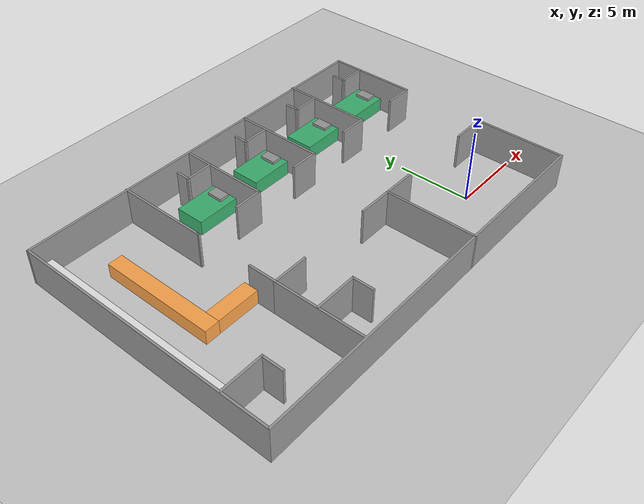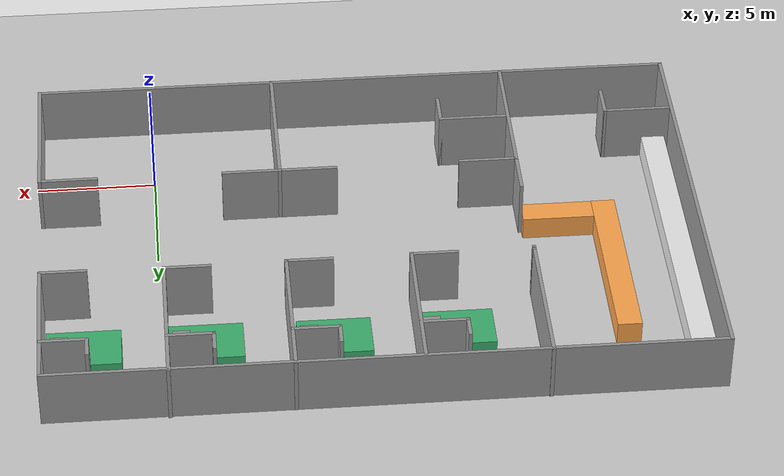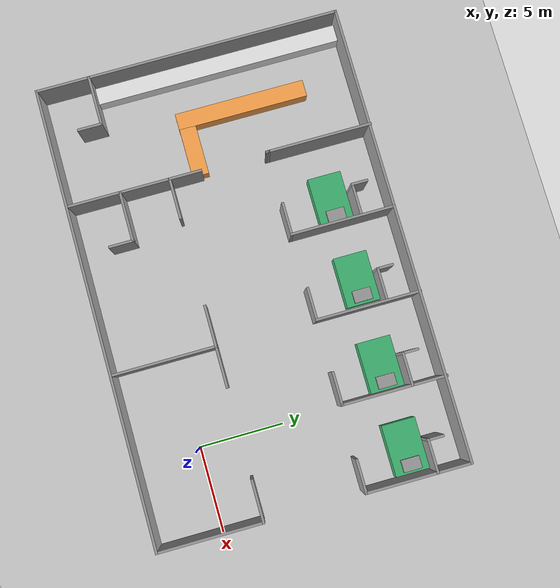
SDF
<sdf version="1.7">
 <world name="default">
  <light name="sun" type="directional">
   <pose>0 0 10 0 -0 0</pose>
   <diffuse>0.8 0.8 0.8 1</diffuse>
   <specular>0.2 0.2 0.2 1</specular>
   <attenuation>
    <range>1000</range>
    <constant>0.9</constant>
    <linear>0.01</linear>
    <quadratic>0.001</quadratic>
   </attenuation>
   <direction>-0.5 0.1 -0.9</direction>
   <spot><inner_angle>0</inner_angle><outer_angle>0</outer_angle><falloff>0</falloff></spot>
  </light>
  <model name="ground_plane">
   <static>1</static>
   <link name="link">
    <collision name="collision">
     <geometry><plane><normal>0 0 1</normal><size>100 100</size></plane></geometry>
     <surface>
      <contact><collide_bitmask>65535</collide_bitmask></contact>
      <friction><ode><mu>100</mu><mu2>50</mu2></ode></friction>
     </surface>
    </collision>
    <visual name="visual">
     <cast_shadows>0</cast_shadows>
     <geometry><plane><normal>0 0 1</normal><size>100 100</size></plane></geometry>
     <material>
      <script><uri>file://media/materials/scripts/gazebo.material</uri><name>Gazebo/Grey</name></script>
     </material>
    </visual>
   </link>
  </model>
  <gravity>0 0 -9.8</gravity>
  <magnetic_field>6e-06 2.3e-05 -4.2e-05</magnetic_field>
  <atmosphere type="adiabatic"/>
  <physics type="ode">
   <max_step_size>0.001</max_step_size>
   <real_time_factor>1</real_time_factor>
   <real_time_update_rate>1000</real_time_update_rate>
  </physics>
  <scene><ambient>0.4 0.4 0.4 1</ambient><background>0.7 0.7 0.7 1</background><shadows>1</shadows></scene>
  <spherical_coordinates>
   <surface_model>EARTH_WGS84</surface_model>
   <latitude_deg>0</latitude_deg>
   <longitude_deg>0</longitude_deg>
   <elevation>0</elevation>
   <heading_deg>0</heading_deg>
  </spherical_coordinates>
  <model name="my_hospital_rev2_20211008">
   <pose>-8.76557 5.4163 0 0 -0 0</pose>
   <link name="Wall_10">
    <collision name="Wall_10_Collision">
     <geometry><box><size>6.25 0.15 2.5</size></box></geometry>
     <pose>0 0 1.25 0 -0 0</pose>
    </collision>
    <visual name="Wall_10_Visual">
     <pose>0 0 1.25 0 -0 0</pose>
     <geometry><box><size>6.25 0.15 2.5</size></box></geometry>
     <material>
      <script><uri>file://media/materials/scripts/gazebo.material</uri><name>Gazebo/Grey</name></script>
      <ambient>1 1 1 1</ambient>
     </material>
     <meta><layer>0</layer></meta>
    </visual>
    <pose>13.55 5.96371 0 0 -0 -1.5708</pose>
   </link>
   <link name="Wall_12">
    <collision name="Wall_12_Collision">
     <geometry><box><size>18.25 0.15 2.5</size></box></geometry>
     <pose>0 0 1.25 0 -0 0</pose>
    </collision>
    <visual name="Wall_12_Visual">
     <pose>0 0 1.25 0 -0 0</pose>
     <geometry><box><size>18.25 0.15 2.5</size></box></geometry>
     <material>
      <script><uri>file://media/materials/scripts/gazebo.material</uri><name>Gazebo/Grey</name></script>
      <ambient>1 1 1 1</ambient>
     </material>
     <meta><layer>0</layer></meta>
    </visual>
    <pose>-13.55 -0.036285 0 0 -0 -1.5708</pose>
   </link>
   <link name="Wall_13">
    <collision name="Wall_13_Collision">
     <geometry><box><size>27.25 0.15 2.5</size></box></geometry>
     <pose>0 0 1.25 0 -0 0</pose>
    </collision>
    <visual name="Wall_13_Visual">
     <pose>0 0 1.25 0 -0 0</pose>
     <geometry><box><size>27.25 0.15 2.5</size></box></geometry>
     <material>
      <script><uri>file://media/materials/scripts/gazebo.material</uri><name>Gazebo/Grey</name></script>
      <ambient>1 1 1 1</ambient>
     </material>
     <meta><layer>0</layer></meta>
    </visual>
    <pose>-0 -9.08629 0 0 -0 0</pose>
   </link>
   <link name="Wall_14">
    <collision name="Wall_14_Collision">
     <geometry><box><size>6.25 0.15 2.5</size></box></geometry>
     <pose>0 0 1.25 0 -0 0</pose>
    </collision>
    <visual name="Wall_14_Visual">
     <pose>0 0 1.25 0 -0 0</pose>
     <geometry><box><size>6.25 0.15 2.5</size></box></geometry>
     <material>
      <script><uri>file://media/materials/scripts/gazebo.material</uri><name>Gazebo/Grey</name></script>
      <ambient>1 1 1 1</ambient>
     </material>
     <meta><layer>0</layer></meta>
    </visual>
    <pose>13.55 -6.03629 0 0 -0 1.5708</pose>
   </link>
   <link name="Wall_16">
    <collision name="Wall_16_Collision">
     <geometry><box><size>6.25 0.15 2.5</size></box></geometry>
     <pose>0 0 1.25 0 -0 0</pose>
    </collision>
    <visual name="Wall_16_Visual">
     <pose>0 0 1.25 0 -0 0</pose>
     <geometry><box><size>6.25 0.15 2.5</size></box></geometry>
     <material>
      <script><uri>file://media/materials/scripts/gazebo.material</uri><name>Gazebo/Grey</name></script>
      <ambient>1 1 1 1</ambient>
     </material>
     <meta><layer>0</layer></meta>
    </visual>
    <pose>-6.50009 6.00886 0 0 -0 -1.5708</pose>
   </link>
   <link name="Wall_18">
    <collision name="Wall_18_Collision">
     <geometry><box><size>6.25 0.15 2.5</size></box></geometry>
     <pose>0 0 1.25 0 -0 0</pose>
    </collision>
    <visual name="Wall_18_Visual">
     <pose>0 0 1.25 0 -0 0</pose>
     <geometry><box><size>6.25 0.15 2.5</size></box></geometry>
     <material>
      <script><uri>file://media/materials/scripts/gazebo.material</uri><name>Gazebo/Grey</name></script>
      <ambient>1 1 1 1</ambient>
     </material>
     <meta><layer>0</layer></meta>
    </visual>
    <pose>-1.4914 5.95669 0 0 -0 -1.5708</pose>
   </link>
   <link name="Wall_20">
    <collision name="Wall_20_Collision">
     <geometry><box><size>6.25 0.15 2.5</size></box></geometry>
     <pose>0 0 1.25 0 -0 0</pose>
    </collision>
    <visual name="Wall_20_Visual">
     <pose>0 0 1.25 0 -0 0</pose>
     <geometry><box><size>6.25 0.15 2.5</size></box></geometry>
     <material>
      <script><uri>file://media/materials/scripts/gazebo.material</uri><name>Gazebo/Grey</name></script>
      <ambient>1 1 1 1</ambient>
     </material>
     <meta><layer>0</layer></meta>
    </visual>
    <pose>3.5968 5.98519 0 0 -0 -1.5708</pose>
   </link>
   <link name="Wall_22">
    <collision name="Wall_22_Collision">
     <geometry><box><size>6.25 0.15 2.5</size></box></geometry>
     <pose>0 0 1.25 0 -0 0</pose>
    </collision>
    <visual name="Wall_22_Visual">
     <pose>0 0 1.25 0 -0 0</pose>
     <geometry><box><size>6.25 0.15 2.5</size></box></geometry>
     <material>
      <script><uri>file://media/materials/scripts/gazebo.material</uri><name>Gazebo/Grey</name></script>
      <ambient>1 1 1 1</ambient>
     </material>
     <meta><layer>0</layer></meta>
    </visual>
    <pose>8.55332 6.03736 0 0 -0 -1.5708</pose>
   </link>
   <link name="Wall_24">
    <collision name="Wall_24_Collision">
     <geometry><box><size>6.25 0.15 2.5</size></box></geometry>
     <pose>0 0 1.25 0 -0 0</pose>
    </collision>
    <visual name="Wall_24_Visual">
     <pose>0 0 1.25 0 -0 0</pose>
     <geometry><box><size>6.25 0.15 2.5</size></box></geometry>
     <material>
      <script><uri>file://media/materials/scripts/gazebo.material</uri><name>Gazebo/Grey</name></script>
      <ambient>1 1 1 1</ambient>
     </material>
     <meta><layer>0</layer></meta>
    </visual>
    <pose>-6.47276 -6.01916 0 0 -0 1.5708</pose>
   </link>
   <link name="Wall_30">
    <collision name="Wall_30_Collision">
     <geometry><box><size>6.28923 0.15 2.5</size></box></geometry>
     <pose>0 0 1.25 0 -0 0</pose>
    </collision>
    <visual name="Wall_30_Visual">
     <pose>0 0 1.25 0 -0 0</pose>
     <geometry><box><size>6.28923 0.15 2.5</size></box></geometry>
     <material>
      <script><uri>file://media/materials/scripts/gazebo.material</uri><name>Gazebo/Grey</name></script>
      <ambient>1 1 1 1</ambient>
     </material>
     <meta><layer>0</layer></meta>
    </visual>
    <pose>3.51053 -6.01774 0 0 -0 1.5708</pose>
   </link>
   <link name="Wall_37">
    <collision name="Wall_37_Collision">
     <geometry><box><size>2 0.15 2.5</size></box></geometry>
     <pose>0 0 1.25 0 -0 0</pose>
    </collision>
    <visual name="Wall_37_Visual">
     <pose>0 0 1.25 0 -0 0</pose>
     <geometry><box><size>2 0.15 2.5</size></box></geometry>
     <material>
      <script><uri>file://media/materials/scripts/gazebo.material</uri><name>Gazebo/Grey</name></script>
      <ambient>1 1 1 1</ambient>
     </material>
     <meta><layer>0</layer></meta>
    </visual>
    <pose>-2.4164 2.90668 0 0 -0 3.14159</pose>
   </link>
   <link name="Wall_39">
    <collision name="Wall_39_Collision">
     <geometry><box><size>2 0.15 2.5</size></box></geometry>
     <pose>0 0 1.25 0 -0 0</pose>
    </collision>
    <visual name="Wall_39_Visual">
     <pose>0 0 1.25 0 -0 0</pose>
     <geometry><box><size>2 0.15 2.5</size></box></geometry>
     <material>
      <script><uri>file://media/materials/scripts/gazebo.material</uri><name>Gazebo/Grey</name></script>
      <ambient>1 1 1 1</ambient>
     </material>
     <meta><layer>0</layer></meta>
    </visual>
    <pose>2.6718 2.93519 0 0 -0 3.14159</pose>
   </link>
   <link name="Wall_41">
    <collision name="Wall_41_Collision">
     <geometry><box><size>2 0.15 2.5</size></box></geometry>
     <pose>0 0 1.25 0 -0 0</pose>
    </collision>
    <visual name="Wall_41_Visual">
     <pose>0 0 1.25 0 -0 0</pose>
     <geometry><box><size>2 0.15 2.5</size></box></geometry>
     <material>
      <script><uri>file://media/materials/scripts/gazebo.material</uri><name>Gazebo/Grey</name></script>
      <ambient>1 1 1 1</ambient>
     </material>
     <meta><layer>0</layer></meta>
    </visual>
    <pose>7.62832 2.98736 0 0 -0 3.14159</pose>
   </link>
   <link name="Wall_45">
    <collision name="Wall_45_Collision">
     <geometry><box><size>2 0.15 2.5</size></box></geometry>
     <pose>0 0 1.25 0 -0 0</pose>
    </collision>
    <visual name="Wall_45_Visual">
     <pose>0 0 1.25 0 -0 0</pose>
     <geometry><box><size>2 0.15 2.5</size></box></geometry>
     <material>
      <script><uri>file://media/materials/scripts/gazebo.material</uri><name>Gazebo/Grey</name></script>
      <ambient>1 1 1 1</ambient>
     </material>
     <meta><layer>0</layer></meta>
    </visual>
    <pose>12.625 2.91371 0 0 -0 3.14159</pose>
   </link>
   <link name="Wall_48">
    <collision name="Wall_48_Collision">
     <geometry><box><size>0.25 0.15 2.5</size></box></geometry>
     <pose>0 0 1.25 0 -0 0</pose>
    </collision>
    <visual name="Wall_48_Visual">
     <pose>0 0 1.25 0 -0 0</pose>
     <geometry><box><size>0.25 0.15 2.5</size></box></geometry>
     <material>
      <script><uri>file://media/materials/scripts/gazebo.material</uri><name>Gazebo/Grey</name></script>
      <ambient>1 1 1 1</ambient>
     </material>
     <meta><layer>0</layer></meta>
    </visual>
    <pose>-6.50009 2.90886 0 0 -0 -1.5708</pose>
   </link>
   <link name="Wall_49">
    <collision name="Wall_49_Collision">
     <geometry><box><size>0.25 0.15 2.5</size></box></geometry>
     <pose>0 0 1.25 0 -0 0</pose>
    </collision>
    <visual name="Wall_49_Visual">
     <pose>0 0 1.25 0 -0 0</pose>
     <geometry><box><size>0.25 0.15 2.5</size></box></geometry>
     <material>
      <script><uri>file://media/materials/scripts/gazebo.material</uri><name>Gazebo/Grey</name></script>
      <ambient>1 1 1 1</ambient>
     </material>
     <meta><layer>0</layer></meta>
    </visual>
    <pose>-6.50009 2.90886 0 0 -0 1.5708</pose>
   </link>
   <link name="Wall_51">
    <collision name="Wall_51_Collision">
     <geometry><box><size>2.5 0.15 2.5</size></box></geometry>
     <pose>0 0 1.25 0 -0 0</pose>
    </collision>
    <visual name="Wall_51_Visual">
     <pose>0 0 1.25 0 -0 0</pose>
     <geometry><box><size>2.5 0.15 2.5</size></box></geometry>
     <material>
      <script><uri>file://media/materials/scripts/gazebo.material</uri><name>Gazebo/Grey</name></script>
      <ambient>1 1 1 1</ambient>
     </material>
     <meta><layer>0</layer></meta>
    </visual>
    <pose>-5.29777 -2.96916 0 0 -0 0</pose>
   </link>
   <link name="Wall_53">
    <collision name="Wall_53_Collision">
     <geometry><box><size>2.5 0.15 2.5</size></box></geometry>
     <pose>0 0 1.25 0 -0 0</pose>
    </collision>
    <visual name="Wall_53_Visual">
     <pose>0 0 1.25 0 -0 0</pose>
     <geometry><box><size>2.5 0.15 2.5</size></box></geometry>
     <material>
      <script><uri>file://media/materials/scripts/gazebo.material</uri><name>Gazebo/Grey</name></script>
      <ambient>1 1 1 1</ambient>
     </material>
     <meta><layer>0</layer></meta>
    </visual>
    <pose>2.33553 -2.94813 0 0 -0 3.14159</pose>
   </link>
   <link name="Wall_55">
    <collision name="Wall_55_Collision">
     <geometry><box><size>2.5 0.15 2.5</size></box></geometry>
     <pose>0 0 1.25 0 -0 0</pose>
    </collision>
    <visual name="Wall_55_Visual">
     <pose>0 0 1.25 0 -0 0</pose>
     <geometry><box><size>2.5 0.15 2.5</size></box></geometry>
     <material>
      <script><uri>file://media/materials/scripts/gazebo.material</uri><name>Gazebo/Grey</name></script>
      <ambient>1 1 1 1</ambient>
     </material>
     <meta><layer>0</layer></meta>
    </visual>
    <pose>4.68553 -2.94813 0 0 -0 0</pose>
   </link>
   <link name="Wall_59">
    <collision name="Wall_59_Collision">
     <geometry><box><size>2.5 0.15 2.5</size></box></geometry>
     <pose>0 0 1.25 0 -0 0</pose>
    </collision>
    <visual name="Wall_59_Visual">
     <pose>0 0 1.25 0 -0 0</pose>
     <geometry><box><size>2.5 0.15 2.5</size></box></geometry>
     <material>
      <script><uri>file://media/materials/scripts/gazebo.material</uri><name>Gazebo/Grey</name></script>
      <ambient>1 1 1 1</ambient>
     </material>
     <meta><layer>0</layer></meta>
    </visual>
    <pose>12.375 -2.98629 0 0 -0 3.14159</pose>
   </link>
   <link name="Wall_61">
    <collision name="Wall_61_Collision">
     <geometry><box><size>3 0.15 2.5</size></box></geometry>
     <pose>0 0 1.25 0 -0 0</pose>
    </collision>
    <visual name="Wall_61_Visual">
     <pose>0 0 1.25 0 -0 0</pose>
     <geometry><box><size>3 0.15 2.5</size></box></geometry>
     <material>
      <script><uri>file://media/materials/scripts/gazebo.material</uri><name>Gazebo/Grey</name></script>
      <ambient>1 1 1 1</ambient>
     </material>
     <meta><layer>0</layer></meta>
    </visual>
    <pose>-12.0955 -5.94134 0 0 -0 0</pose>
   </link>
   <link name="Wall_62">
    <collision name="Wall_62_Collision">
     <geometry><box><size>1.5 0.15 2.5</size></box></geometry>
     <pose>0 0 1.25 0 -0 0</pose>
    </collision>
    <visual name="Wall_62_Visual">
     <pose>0 0 1.25 0 -0 0</pose>
     <geometry><box><size>1.5 0.15 2.5</size></box></geometry>
     <material>
      <script><uri>file://media/materials/scripts/gazebo.material</uri><name>Gazebo/Grey</name></script>
      <ambient>1 1 1 1</ambient>
     </material>
     <meta><layer>0</layer></meta>
    </visual>
    <pose>-10.6705 -6.61634 0 0 -0 -1.5708</pose>
   </link>
   <link name="Wall_65">
    <collision name="Wall_65_Collision">
     <geometry><box><size>3 0.15 2.5</size></box></geometry>
     <pose>0 0 1.25 0 -0 0</pose>
    </collision>
    <visual name="Wall_65_Visual">
     <pose>0 0 1.25 0 -0 0</pose>
     <geometry><box><size>3 0.15 2.5</size></box></geometry>
     <material>
      <script><uri>file://media/materials/scripts/gazebo.material</uri><name>Gazebo/Grey</name></script>
      <ambient>1 1 1 1</ambient>
     </material>
     <meta><layer>0</layer></meta>
    </visual>
    <pose>-4.99515 -5.92173 0 0 -0 0</pose>
   </link>
   <link name="Wall_66">
    <collision name="Wall_66_Collision">
     <geometry><box><size>1.5 0.15 2.5</size></box></geometry>
     <pose>0 0 1.25 0 -0 0</pose>
    </collision>
    <visual name="Wall_66_Visual">
     <pose>0 0 1.25 0 -0 0</pose>
     <geometry><box><size>1.5 0.15 2.5</size></box></geometry>
     <material>
      <script><uri>file://media/materials/scripts/gazebo.material</uri><name>Gazebo/Grey</name></script>
      <ambient>1 1 1 1</ambient>
     </material>
     <meta><layer>0</layer></meta>
    </visual>
    <pose>-3.57015 -6.59673 0 0 -0 -1.5708</pose>
   </link>
   <link name="Wall_68">
    <collision name="Wall_68_Collision">
     <geometry><box><size>2 0.15 2.5</size></box></geometry>
     <pose>0 0 1.25 0 -0 0</pose>
    </collision>
    <visual name="Wall_68_Visual">
     <pose>0 0 1.25 0 -0 0</pose>
     <geometry><box><size>2 0.15 2.5</size></box></geometry>
     <material>
      <script><uri>file://media/materials/scripts/gazebo.material</uri><name>Gazebo/Grey</name></script>
      <ambient>1 1 1 1</ambient>
     </material>
     <meta><layer>0</layer></meta>
    </visual>
    <pose>2.65224 7.08223 0 0 -0 3.14159</pose>
   </link>
   <link name="Wall_69">
    <collision name="Wall_69_Collision">
     <geometry><box><size>1 0.15 2.5</size></box></geometry>
     <pose>0 0 1.25 0 -0 0</pose>
    </collision>
    <visual name="Wall_69_Visual">
     <pose>0 0 1.25 0 -0 0</pose>
     <geometry><box><size>1 0.15 2.5</size></box></geometry>
     <material>
      <script><uri>file://media/materials/scripts/gazebo.material</uri><name>Gazebo/Grey</name></script>
      <ambient>1 1 1 1</ambient>
     </material>
     <meta><layer>0</layer></meta>
    </visual>
    <pose>1.72724 7.50723 0 0 -0 1.5708</pose>
   </link>
   <link name="Wall_71">
    <collision name="Wall_71_Collision">
     <geometry><box><size>2 0.15 2.5</size></box></geometry>
     <pose>0 0 1.25 0 -0 0</pose>
    </collision>
    <visual name="Wall_71_Visual">
     <pose>0 0 1.25 0 -0 0</pose>
     <geometry><box><size>2 0.15 2.5</size></box></geometry>
     <material>
      <script><uri>file://media/materials/scripts/gazebo.material</uri><name>Gazebo/Grey</name></script>
      <ambient>1 1 1 1</ambient>
     </material>
     <meta><layer>0</layer></meta>
    </visual>
    <pose>7.62666 7.08456 0 0 -0 3.14159</pose>
   </link>
   <link name="Wall_72">
    <collision name="Wall_72_Collision">
     <geometry><box><size>1 0.15 2.5</size></box></geometry>
     <pose>0 0 1.25 0 -0 0</pose>
    </collision>
    <visual name="Wall_72_Visual">
     <pose>0 0 1.25 0 -0 0</pose>
     <geometry><box><size>1 0.15 2.5</size></box></geometry>
     <material>
      <script><uri>file://media/materials/scripts/gazebo.material</uri><name>Gazebo/Grey</name></script>
      <ambient>1 1 1 1</ambient>
     </material>
     <meta><layer>0</layer></meta>
    </visual>
    <pose>6.70166 7.50956 0 0 -0 1.5708</pose>
   </link>
   <link name="Wall_74">
    <collision name="Wall_74_Collision">
     <geometry><box><size>2 0.15 2.5</size></box></geometry>
     <pose>0 0 1.25 0 -0 0</pose>
    </collision>
    <visual name="Wall_74_Visual">
     <pose>0 0 1.25 0 -0 0</pose>
     <geometry><box><size>2 0.15 2.5</size></box></geometry>
     <material>
      <script><uri>file://media/materials/scripts/gazebo.material</uri><name>Gazebo/Grey</name></script>
      <ambient>1 1 1 1</ambient>
     </material>
     <meta><layer>0</layer></meta>
    </visual>
    <pose>12.6129 7.05333 0 0 -0 3.14159</pose>
   </link>
   <link name="Wall_75">
    <collision name="Wall_75_Collision">
     <geometry><box><size>1 0.15 2.5</size></box></geometry>
     <pose>0 0 1.25 0 -0 0</pose>
    </collision>
    <visual name="Wall_75_Visual">
     <pose>0 0 1.25 0 -0 0</pose>
     <geometry><box><size>1 0.15 2.5</size></box></geometry>
     <material>
      <script><uri>file://media/materials/scripts/gazebo.material</uri><name>Gazebo/Grey</name></script>
      <ambient>1 1 1 1</ambient>
     </material>
     <meta><layer>0</layer></meta>
    </visual>
    <pose>11.6879 7.47833 0 0 -0 1.5708</pose>
   </link>
   <link name="Wall_77">
    <collision name="Wall_77_Collision">
     <geometry><box><size>2 0.15 2.5</size></box></geometry>
     <pose>0 0 1.25 0 -0 0</pose>
    </collision>
    <visual name="Wall_77_Visual">
     <pose>0 0 1.25 0 -0 0</pose>
     <geometry><box><size>2 0.15 2.5</size></box></geometry>
     <material>
      <script><uri>file://media/materials/scripts/gazebo.material</uri><name>Gazebo/Grey</name></script>
      <ambient>1 1 1 1</ambient>
     </material>
     <meta><layer>0</layer></meta>
    </visual>
    <pose>-2.42632 7.06694 0 0 -0 3.14159</pose>
   </link>
   <link name="Wall_78">
    <collision name="Wall_78_Collision">
     <geometry><box><size>1 0.15 2.5</size></box></geometry>
     <pose>0 0 1.25 0 -0 0</pose>
    </collision>
    <visual name="Wall_78_Visual">
     <pose>0 0 1.25 0 -0 0</pose>
     <geometry><box><size>1 0.15 2.5</size></box></geometry>
     <material>
      <script><uri>file://media/materials/scripts/gazebo.material</uri><name>Gazebo/Grey</name></script>
      <ambient>1 1 1 1</ambient>
     </material>
     <meta><layer>0</layer></meta>
    </visual>
    <pose>-3.35132 7.49194 0 0 -0 1.5708</pose>
   </link>
   <link name="Wall_80">
    <collision name="Wall_80_Collision">
     <geometry><box><size>2 0.15 2.5</size></box></geometry>
     <pose>0 0 1.25 0 -0 0</pose>
    </collision>
    <visual name="Wall_80_Visual">
     <pose>0 0 1.25 0 -0 0</pose>
     <geometry><box><size>2 0.15 2.5</size></box></geometry>
     <material>
      <script><uri>file://media/materials/scripts/gazebo.material</uri><name>Gazebo/Grey</name></script>
      <ambient>1 1 1 1</ambient>
     </material>
     <meta><layer>0</layer></meta>
    </visual>
    <pose>-6.47276 -2.04416 0 0 -0 1.5708</pose>
   </link>
   <link name="Wall_9">
    <collision name="Wall_9_Collision">
     <geometry><box><size>27.25 0.15 2.5</size></box></geometry>
     <pose>0 0 1.25 0 -0 0</pose>
    </collision>
    <visual name="Wall_9_Visual">
     <pose>0 0 1.25 0 -0 0</pose>
     <geometry><box><size>27.25 0.15 2.5</size></box></geometry>
     <material>
      <script><uri>file://media/materials/scripts/gazebo.material</uri><name>Gazebo/Grey</name></script>
      <ambient>1 1 1 1</ambient>
     </material>
     <meta><layer>0</layer></meta>
    </visual>
    <pose>-0 9.01372 0 0 -0 0</pose>
   </link>
   <static>1</static>
  </model>
  <model name="low_cabinet_for_chef">
   <link name="link_1">
    <inertial>
     <mass>1</mass>
     <inertia>
      <ixx>0.166667</ixx>
      <ixy>0</ixy>
      <ixz>0</ixz>
      <iyy>0.166667</iyy>
      <iyz>0</iyz>
      <izz>0.166667</izz>
     </inertia>
    </inertial>
    <visual name="visual">
     <geometry><box><size>1 15 1</size></box></geometry>
     <material>
      <lighting>1</lighting>
      <script><uri>file://media/materials/scripts/gazebo.material</uri><name>Gazebo/White</name></script>
      <shader type="pixel"><normal_map>__default__</normal_map></shader>
      <ambient>1.0 0.65 0.3 1</ambient>
      <diffuse>0.7 0.7 0.7 1</diffuse>
      <specular>0.01 0.01 0.01 1</specular>
      <emissive>0 0 0 1</emissive>
     </material>
    </visual>
    <collision name="collision">
     <geometry><box><size>1 15 1</size></box></geometry>
     <surface>
      <friction>
       <ode><mu>1</mu><mu2>1</mu2><fdir1>0 0 0</fdir1><slip1>0</slip1><slip2>0</slip2></ode>
       <torsional>
        <coefficient>1</coefficient>
        <patch_radius>0</patch_radius>
        <surface_radius>0</surface_radius>
        <use_patch_radius>1</use_patch_radius>
        <ode><slip>0</slip></ode>
       </torsional>
      </friction>
      <bounce><restitution_coefficient>0</restitution_coefficient><threshold>1e+06</threshold></bounce>
      <contact>
       <collide_without_contact>0</collide_without_contact>
       <collide_without_contact_bitmask>1</collide_without_contact_bitmask>
       <collide_bitmask>1</collide_bitmask>
       <ode>
        <soft_cfm>0</soft_cfm>
        <soft_erp>0.2</soft_erp>
        <kp>1e+13</kp>
        <kd>1</kd>
        <max_vel>0.01</max_vel>
        <min_depth>0</min_depth>
       </ode>
       <bullet>
        <split_impulse>1</split_impulse>
        <split_impulse_penetration_threshold>-0.01</split_impulse_penetration_threshold>
        <soft_cfm>0</soft_cfm>
        <soft_erp>0.2</soft_erp>
        <kp>1e+13</kp>
        <kd>1</kd>
       </bullet>
      </contact>
     </surface>
    </collision>
   </link>
   <static>1</static>
   <pose>-21.5781 6.90811 0.5 0 -0 0</pose>
  </model>
  <model name="my_patient_bed">
   <link name="link_4">
    <inertial>
     <mass>3.69849</mass>
     <inertia><ixx>0.816301</ixx><ixy>0</ixy><ixz>0</ixz><iyy>2.8656</iyy><iyz>0</iyz><izz>3.06548</izz></inertia>
    </inertial>
    <pose>-0.49693 -0.01543 -0.29757 0 -0 0</pose>
    <visual name="visual">
     <geometry><box><size>3 2 1</size></box></geometry>
     <material>
      <lighting>1</lighting>
      <script><uri>file://media/materials/scripts/gazebo.material</uri><name>Gazebo/Grey</name></script>
      <shader type="pixel"><normal_map>__default__</normal_map></shader>
      <ambient>0.24 0.70 0.44 1</ambient>
      <diffuse>0.7 0.7 0.7 1</diffuse>
      <specular>0.01 0.01 0.01 1</specular>
      <emissive>0 0 0 1</emissive>
     </material>
    </visual>
    <collision name="collision">
     <geometry><box><size>3 2 1</size></box></geometry>
     <surface>
      <friction>
       <ode><mu>1</mu><mu2>1</mu2><fdir1>0 0 0</fdir1><slip1>0</slip1><slip2>0</slip2></ode>
       <torsional>
        <coefficient>1</coefficient>
        <patch_radius>0</patch_radius>
        <surface_radius>0</surface_radius>
        <use_patch_radius>1</use_patch_radius>
        <ode><slip>0</slip></ode>
       </torsional>
      </friction>
      <bounce><restitution_coefficient>0</restitution_coefficient><threshold>1e+06</threshold></bounce>
      <contact>
       <collide_without_contact>0</collide_without_contact>
       <collide_without_contact_bitmask>1</collide_without_contact_bitmask>
       <collide_bitmask>1</collide_bitmask>
       <ode>
        <soft_cfm>0</soft_cfm>
        <soft_erp>0.2</soft_erp>
        <kp>1e+13</kp>
        <kd>1</kd>
        <max_vel>0.01</max_vel>
        <min_depth>0</min_depth>
       </ode>
       <bullet>
        <split_impulse>1</split_impulse>
        <split_impulse_penetration_threshold>-0.01</split_impulse_penetration_threshold>
        <soft_cfm>0</soft_cfm>
        <soft_erp>0.2</soft_erp>
        <kp>1e+13</kp>
        <kd>1</kd>
       </bullet>
      </contact>
     </surface>
    </collision>
   </link>
   <link name="link_5">
    <inertial>
     <mass>0.139085</mass>
     <inertia>
      <ixx>0.0141087</ixx>
      <ixy>0</ixy>
      <ixz>0</ixz>
      <iyy>0.00623569</iyy>
      <iyz>0</iyz>
      <izz>0.0195968</izz>
     </inertia>
    </inertial>
    <pose>0.49693 0.01543 0.297568 0 -0 0</pose>
    <visual name="visual">
     <geometry><box><size>0.711162 1.08859 0.179589</size></box></geometry>
     <material>
      <lighting>1</lighting>
      <script><uri>file://media/materials/scripts/gazebo.material</uri><name>Gazebo/Grey</name></script>
      <shader type="pixel"><normal_map>__default__</normal_map></shader>
      <ambient>1 1 1 1</ambient>
      <diffuse>0.7 0.7 0.7 1</diffuse>
      <specular>0.01 0.01 0.01 1</specular>
      <emissive>0 0 0 1</emissive>
     </material>
    </visual>
    <collision name="collision">
     <geometry><box><size>0.711162 1.08859 0.179589</size></box></geometry>
     <surface>
      <friction>
       <ode><mu>1</mu><mu2>1</mu2><fdir1>0 0 0</fdir1><slip1>0</slip1><slip2>0</slip2></ode>
       <torsional>
        <coefficient>1</coefficient>
        <patch_radius>0</patch_radius>
        <surface_radius>0</surface_radius>
        <use_patch_radius>1</use_patch_radius>
        <ode><slip>0</slip></ode>
       </torsional>
      </friction>
      <bounce><restitution_coefficient>0</restitution_coefficient><threshold>1e+06</threshold></bounce>
      <contact>
       <collide_without_contact>0</collide_without_contact>
       <collide_without_contact_bitmask>1</collide_without_contact_bitmask>
       <collide_bitmask>1</collide_bitmask>
       <ode>
        <soft_cfm>0</soft_cfm>
        <soft_erp>0.2</soft_erp>
        <kp>1e+13</kp>
        <kd>1</kd>
        <max_vel>0.01</max_vel>
        <min_depth>0</min_depth>
       </ode>
       <bullet>
        <split_impulse>1</split_impulse>
        <split_impulse_penetration_threshold>-0.01</split_impulse_penetration_threshold>
        <soft_cfm>0</soft_cfm>
        <soft_erp>0.2</soft_erp>
        <kp>1e+13</kp>
        <kd>1</kd>
       </bullet>
      </contact>
     </surface>
    </collision>
   </link>
   <static>1</static>
   <pose>-11.3512 11.2676 0.79757 0 -0 0</pose>
  </model>
  <model name="my_patient_bed_clone">
   <link name="link_4">
    <inertial>
     <mass>3.69849</mass>
     <inertia><ixx>0.816301</ixx><ixy>0</ixy><ixz>0</ixz><iyy>2.8656</iyy><iyz>0</iyz><izz>3.06548</izz></inertia>
    </inertial>
    <pose>-0.49693 -0.01543 -0.29757 0 -0 0</pose>
    <visual name="visual">
     <geometry><box><size>3 2 1</size></box></geometry>
     <material>
      <lighting>1</lighting>
      <script><uri>file://media/materials/scripts/gazebo.material</uri><name>Gazebo/Grey</name></script>
      <shader type="pixel"><normal_map>__default__</normal_map></shader>
      <ambient>0.24 0.70 0.44 1</ambient>
      <diffuse>0.7 0.7 0.7 1</diffuse>
      <specular>0.01 0.01 0.01 1</specular>
      <emissive>0 0 0 1</emissive>
     </material>
    </visual>
    <collision name="collision">
     <geometry><box><size>3 2 1</size></box></geometry>
     <surface>
      <friction>
       <ode><mu>1</mu><mu2>1</mu2><fdir1>0 0 0</fdir1><slip1>0</slip1><slip2>0</slip2></ode>
       <torsional>
        <coefficient>1</coefficient>
        <patch_radius>0</patch_radius>
        <surface_radius>0</surface_radius>
        <use_patch_radius>1</use_patch_radius>
        <ode><slip>0</slip></ode>
       </torsional>
      </friction>
      <bounce><restitution_coefficient>0</restitution_coefficient><threshold>1e+06</threshold></bounce>
      <contact>
       <collide_without_contact>0</collide_without_contact>
       <collide_without_contact_bitmask>1</collide_without_contact_bitmask>
       <collide_bitmask>1</collide_bitmask>
       <ode>
        <soft_cfm>0</soft_cfm>
        <soft_erp>0.2</soft_erp>
        <kp>1e+13</kp>
        <kd>1</kd>
        <max_vel>0.01</max_vel>
        <min_depth>0</min_depth>
       </ode>
       <bullet>
        <split_impulse>1</split_impulse>
        <split_impulse_penetration_threshold>-0.01</split_impulse_penetration_threshold>
        <soft_cfm>0</soft_cfm>
        <soft_erp>0.2</soft_erp>
        <kp>1e+13</kp>
        <kd>1</kd>
       </bullet>
      </contact>
     </surface>
    </collision>
   </link>
   <link name="link_5">
    <inertial>
     <mass>0.139085</mass>
     <inertia>
      <ixx>0.0141087</ixx>
      <ixy>0</ixy>
      <ixz>0</ixz>
      <iyy>0.00623569</iyy>
      <iyz>0</iyz>
      <izz>0.0195968</izz>
     </inertia>
    </inertial>
    <pose>0.49693 0.01543 0.297568 0 -0 0</pose>
    <visual name="visual">
     <geometry><box><size>0.711162 1.08859 0.179589</size></box></geometry>
     <material>
      <lighting>1</lighting>
      <script><uri>file://media/materials/scripts/gazebo.material</uri><name>Gazebo/Grey</name></script>
      <shader type="pixel"><normal_map>__default__</normal_map></shader>
      <ambient>1 1 1 1</ambient>
      <diffuse>0.7 0.7 0.7 1</diffuse>
      <specular>0.01 0.01 0.01 1</specular>
      <emissive>0 0 0 1</emissive>
     </material>
    </visual>
    <collision name="collision">
     <geometry><box><size>0.711162 1.08859 0.179589</size></box></geometry>
     <surface>
      <friction>
       <ode><mu>1</mu><mu2>1</mu2><fdir1>0 0 0</fdir1><slip1>0</slip1><slip2>0</slip2></ode>
       <torsional>
        <coefficient>1</coefficient>
        <patch_radius>0</patch_radius>
        <surface_radius>0</surface_radius>
        <use_patch_radius>1</use_patch_radius>
        <ode><slip>0</slip></ode>
       </torsional>
      </friction>
      <bounce><restitution_coefficient>0</restitution_coefficient><threshold>1e+06</threshold></bounce>
      <contact>
       <collide_without_contact>0</collide_without_contact>
       <collide_without_contact_bitmask>1</collide_without_contact_bitmask>
       <collide_bitmask>1</collide_bitmask>
       <ode>
        <soft_cfm>0</soft_cfm>
        <soft_erp>0.2</soft_erp>
        <kp>1e+13</kp>
        <kd>1</kd>
        <max_vel>0.01</max_vel>
        <min_depth>0</min_depth>
       </ode>
       <bullet>
        <split_impulse>1</split_impulse>
        <split_impulse_penetration_threshold>-0.01</split_impulse_penetration_threshold>
        <soft_cfm>0</soft_cfm>
        <soft_erp>0.2</soft_erp>
        <kp>1e+13</kp>
        <kd>1</kd>
       </bullet>
      </contact>
     </surface>
    </collision>
   </link>
   <static>1</static>
   <pose>-6.40963 11.4058 0.79757 0 -0 0</pose>
  </model>
  <model name="my_patient_bed_clone_0">
   <link name="link_4">
    <inertial>
     <mass>3.69849</mass>
     <inertia><ixx>0.816301</ixx><ixy>0</ixy><ixz>0</ixz><iyy>2.8656</iyy><iyz>0</iyz><izz>3.06548</izz></inertia>
    </inertial>
    <pose>-0.49693 -0.01543 -0.29757 0 -0 0</pose>
    <visual name="visual">
     <geometry><box><size>3 2 1</size></box></geometry>
     <material>
      <lighting>1</lighting>
      <script><uri>file://media/materials/scripts/gazebo.material</uri><name>Gazebo/Grey</name></script>
      <shader type="pixel"><normal_map>__default__</normal_map></shader>
      <ambient>0.24 0.70 0.44 1</ambient>
      <diffuse>0.7 0.7 0.7 1</diffuse>
      <specular>0.01 0.01 0.01 1</specular>
      <emissive>0 0 0 1</emissive>
     </material>
    </visual>
    <collision name="collision">
     <geometry><box><size>3 2 1</size></box></geometry>
     <surface>
      <friction>
       <ode><mu>1</mu><mu2>1</mu2><fdir1>0 0 0</fdir1><slip1>0</slip1><slip2>0</slip2></ode>
       <torsional>
        <coefficient>1</coefficient>
        <patch_radius>0</patch_radius>
        <surface_radius>0</surface_radius>
        <use_patch_radius>1</use_patch_radius>
        <ode><slip>0</slip></ode>
       </torsional>
      </friction>
      <bounce><restitution_coefficient>0</restitution_coefficient><threshold>1e+06</threshold></bounce>
      <contact>
       <collide_without_contact>0</collide_without_contact>
       <collide_without_contact_bitmask>1</collide_without_contact_bitmask>
       <collide_bitmask>1</collide_bitmask>
       <ode>
        <soft_cfm>0</soft_cfm>
        <soft_erp>0.2</soft_erp>
        <kp>1e+13</kp>
        <kd>1</kd>
        <max_vel>0.01</max_vel>
        <min_depth>0</min_depth>
       </ode>
       <bullet>
        <split_impulse>1</split_impulse>
        <split_impulse_penetration_threshold>-0.01</split_impulse_penetration_threshold>
        <soft_cfm>0</soft_cfm>
        <soft_erp>0.2</soft_erp>
        <kp>1e+13</kp>
        <kd>1</kd>
       </bullet>
      </contact>
     </surface>
    </collision>
   </link>
   <link name="link_5">
    <inertial>
     <mass>0.139085</mass>
     <inertia>
      <ixx>0.0141087</ixx>
      <ixy>0</ixy>
      <ixz>0</ixz>
      <iyy>0.00623569</iyy>
      <iyz>0</iyz>
      <izz>0.0195968</izz>
     </inertia>
    </inertial>
    <pose>0.49693 0.01543 0.297568 0 -0 0</pose>
    <visual name="visual">
     <geometry><box><size>0.711162 1.08859 0.179589</size></box></geometry>
     <material>
      <lighting>1</lighting>
      <script><uri>file://media/materials/scripts/gazebo.material</uri><name>Gazebo/Grey</name></script>
      <shader type="pixel"><normal_map>__default__</normal_map></shader>
      <ambient>1 1 1 1</ambient>
      <diffuse>0.7 0.7 0.7 1</diffuse>
      <specular>0.01 0.01 0.01 1</specular>
      <emissive>0 0 0 1</emissive>
     </material>
    </visual>
    <collision name="collision">
     <geometry><box><size>0.711162 1.08859 0.179589</size></box></geometry>
     <surface>
      <friction>
       <ode><mu>1</mu><mu2>1</mu2><fdir1>0 0 0</fdir1><slip1>0</slip1><slip2>0</slip2></ode>
       <torsional>
        <coefficient>1</coefficient>
        <patch_radius>0</patch_radius>
        <surface_radius>0</surface_radius>
        <use_patch_radius>1</use_patch_radius>
        <ode><slip>0</slip></ode>
       </torsional>
      </friction>
      <bounce><restitution_coefficient>0</restitution_coefficient><threshold>1e+06</threshold></bounce>
      <contact>
       <collide_without_contact>0</collide_without_contact>
       <collide_without_contact_bitmask>1</collide_without_contact_bitmask>
       <collide_bitmask>1</collide_bitmask>
       <ode>
        <soft_cfm>0</soft_cfm>
        <soft_erp>0.2</soft_erp>
        <kp>1e+13</kp>
        <kd>1</kd>
        <max_vel>0.01</max_vel>
        <min_depth>0</min_depth>
       </ode>
       <bullet>
        <split_impulse>1</split_impulse>
        <split_impulse_penetration_threshold>-0.01</split_impulse_penetration_threshold>
        <soft_cfm>0</soft_cfm>
        <soft_erp>0.2</soft_erp>
        <kp>1e+13</kp>
        <kd>1</kd>
       </bullet>
      </contact>
     </surface>
    </collision>
   </link>
   <static>1</static>
   <pose>-1.2856 11.3283 0.79757 0 -0 0</pose>
  </model>
  <model name="my_patient_bed_clone_1">
   <link name="link_4">
    <inertial>
     <mass>3.69849</mass>
     <inertia><ixx>0.816301</ixx><ixy>0</ixy><ixz>0</ixz><iyy>2.8656</iyy><iyz>0</iyz><izz>3.06548</izz></inertia>
    </inertial>
    <pose>-0.49693 -0.01543 -0.29757 0 -0 0</pose>
    <visual name="visual">
     <geometry><box><size>3 2 1</size></box></geometry>
     <material>
      <lighting>1</lighting>
      <script><uri>file://media/materials/scripts/gazebo.material</uri><name>Gazebo/Grey</name></script>
      <shader type="pixel"><normal_map>__default__</normal_map></shader>
      <ambient>0.24 0.70 0.44 1</ambient>
      <diffuse>0.7 0.7 0.7 1</diffuse>
      <specular>0.01 0.01 0.01 1</specular>
      <emissive>0 0 0 1</emissive>
     </material>
    </visual>
    <collision name="collision">
     <geometry><box><size>3 2 1</size></box></geometry>
     <surface>
      <friction>
       <ode><mu>1</mu><mu2>1</mu2><fdir1>0 0 0</fdir1><slip1>0</slip1><slip2>0</slip2></ode>
       <torsional>
        <coefficient>1</coefficient>
        <patch_radius>0</patch_radius>
        <surface_radius>0</surface_radius>
        <use_patch_radius>1</use_patch_radius>
        <ode><slip>0</slip></ode>
       </torsional>
      </friction>
      <bounce><restitution_coefficient>0</restitution_coefficient><threshold>1e+06</threshold></bounce>
      <contact>
       <collide_without_contact>0</collide_without_contact>
       <collide_without_contact_bitmask>1</collide_without_contact_bitmask>
       <collide_bitmask>1</collide_bitmask>
       <ode>
        <soft_cfm>0</soft_cfm>
        <soft_erp>0.2</soft_erp>
        <kp>1e+13</kp>
        <kd>1</kd>
        <max_vel>0.01</max_vel>
        <min_depth>0</min_depth>
       </ode>
       <bullet>
        <split_impulse>1</split_impulse>
        <split_impulse_penetration_threshold>-0.01</split_impulse_penetration_threshold>
        <soft_cfm>0</soft_cfm>
        <soft_erp>0.2</soft_erp>
        <kp>1e+13</kp>
        <kd>1</kd>
       </bullet>
      </contact>
     </surface>
    </collision>
   </link>
   <link name="link_5">
    <inertial>
     <mass>0.139085</mass>
     <inertia>
      <ixx>0.0141087</ixx>
      <ixy>0</ixy>
      <ixz>0</ixz>
      <iyy>0.00623569</iyy>
      <iyz>0</iyz>
      <izz>0.0195968</izz>
     </inertia>
    </inertial>
    <pose>0.49693 0.01543 0.297568 0 -0 0</pose>
    <visual name="visual">
     <geometry><box><size>0.711162 1.08859 0.179589</size></box></geometry>
     <material>
      <lighting>1</lighting>
      <script><uri>file://media/materials/scripts/gazebo.material</uri><name>Gazebo/Grey</name></script>
      <shader type="pixel"><normal_map>__default__</normal_map></shader>
      <ambient>1 1 1 1</ambient>
      <diffuse>0.7 0.7 0.7 1</diffuse>
      <specular>0.01 0.01 0.01 1</specular>
      <emissive>0 0 0 1</emissive>
     </material>
    </visual>
    <collision name="collision">
     <geometry><box><size>0.711162 1.08859 0.179589</size></box></geometry>
     <surface>
      <friction>
       <ode><mu>1</mu><mu2>1</mu2><fdir1>0 0 0</fdir1><slip1>0</slip1><slip2>0</slip2></ode>
       <torsional>
        <coefficient>1</coefficient>
        <patch_radius>0</patch_radius>
        <surface_radius>0</surface_radius>
        <use_patch_radius>1</use_patch_radius>
        <ode><slip>0</slip></ode>
       </torsional>
      </friction>
      <bounce><restitution_coefficient>0</restitution_coefficient><threshold>1e+06</threshold></bounce>
      <contact>
       <collide_without_contact>0</collide_without_contact>
       <collide_without_contact_bitmask>1</collide_without_contact_bitmask>
       <collide_bitmask>1</collide_bitmask>
       <ode>
        <soft_cfm>0</soft_cfm>
        <soft_erp>0.2</soft_erp>
        <kp>1e+13</kp>
        <kd>1</kd>
        <max_vel>0.01</max_vel>
        <min_depth>0</min_depth>
       </ode>
       <bullet>
        <split_impulse>1</split_impulse>
        <split_impulse_penetration_threshold>-0.01</split_impulse_penetration_threshold>
        <soft_cfm>0</soft_cfm>
        <soft_erp>0.2</soft_erp>
        <kp>1e+13</kp>
        <kd>1</kd>
       </bullet>
      </contact>
     </surface>
    </collision>
   </link>
   <static>1</static>
   <pose>3.60235 11.3625 0.79757 0 -0 0</pose>
  </model>
  <model name="low_cabinet_for_robot">
   <link name="link_2">
    <inertial>
     <mass>1</mass>
     <inertia>
      <ixx>0.166667</ixx>
      <ixy>0</ixy>
      <ixz>0</ixz>
      <iyy>0.166667</iyy>
      <iyz>0</iyz>
      <izz>0.166667</izz>
     </inertia>
    </inertial>
    <pose>0.508705 -2.22829 0 0 -0 0</pose>
    <visual name="visual">
     <geometry><box><size>3 1 1</size></box></geometry>
     <material>
      <lighting>1</lighting>
      <script><uri>file://media/materials/scripts/gazebo.material</uri><name>Gazebo/Grey</name></script>
      <shader type="pixel"><normal_map>__default__</normal_map></shader>
      <ambient>1.0 0.65 0.3 1</ambient>
      <diffuse>0.7 0.7 0.7 1</diffuse>
      <specular>0.01 0.01 0.01 1</specular>
      <emissive>0 0 0 1</emissive>
     </material>
    </visual>
    <collision name="collision">
     <geometry><box><size>3 1 1</size></box></geometry>
     <surface>
      <friction>
       <ode><mu>1</mu><mu2>1</mu2><fdir1>0 0 0</fdir1><slip1>0</slip1><slip2>0</slip2></ode>
       <torsional>
        <coefficient>1</coefficient>
        <patch_radius>0</patch_radius>
        <surface_radius>0</surface_radius>
        <use_patch_radius>1</use_patch_radius>
        <ode><slip>0</slip></ode>
       </torsional>
      </friction>
      <bounce><restitution_coefficient>0</restitution_coefficient><threshold>1e+06</threshold></bounce>
      <contact>
       <collide_without_contact>0</collide_without_contact>
       <collide_without_contact_bitmask>1</collide_without_contact_bitmask>
       <collide_bitmask>1</collide_bitmask>
       <ode>
        <soft_cfm>0</soft_cfm>
        <soft_erp>0.2</soft_erp>
        <kp>1e+13</kp>
        <kd>1</kd>
        <max_vel>0.01</max_vel>
        <min_depth>0</min_depth>
       </ode>
       <bullet>
        <split_impulse>1</split_impulse>
        <split_impulse_penetration_threshold>-0.01</split_impulse_penetration_threshold>
        <soft_cfm>0</soft_cfm>
        <soft_erp>0.2</soft_erp>
        <kp>1e+13</kp>
        <kd>1</kd>
       </bullet>
      </contact>
     </surface>
    </collision>
   </link>
   <link name="link_3">
    <inertial>
     <mass>7.89382</mass>
     <inertia><ixx>41.648</ixx><ixy>0</ixy><ixz>0</ixz><iyy>1.31564</iyy><iyz>0</iyz><izz>41.648</izz></inertia>
    </inertial>
    <pose>-1.47273 1.20542 0 0 -0 0</pose>
    <visual name="visual">
     <geometry><box><size>1 7.89382 1</size></box></geometry>
     <material>
      <lighting>1</lighting>
      <script><uri>file://media/materials/scripts/gazebo.material</uri><name>Gazebo/Grey</name></script>
      <shader type="pixel"><normal_map>__default__</normal_map></shader>
      <ambient>1.0 0.65 0.3 1</ambient>
      <diffuse>0.7 0.7 0.7 1</diffuse>
      <specular>0.01 0.01 0.01 1</specular>
      <emissive>0 0 0 1</emissive>
     </material>
    </visual>
    <collision name="collision">
     <geometry><box><size>1 7.89382 1</size></box></geometry>
     <surface>
      <friction>
       <ode><mu>1</mu><mu2>1</mu2><fdir1>0 0 0</fdir1><slip1>0</slip1><slip2>0</slip2></ode>
       <torsional>
        <coefficient>1</coefficient>
        <patch_radius>0</patch_radius>
        <surface_radius>0</surface_radius>
        <use_patch_radius>1</use_patch_radius>
        <ode><slip>0</slip></ode>
       </torsional>
      </friction>
      <bounce><restitution_coefficient>0</restitution_coefficient><threshold>1e+06</threshold></bounce>
      <contact>
       <collide_without_contact>0</collide_without_contact>
       <collide_without_contact_bitmask>1</collide_without_contact_bitmask>
       <collide_bitmask>1</collide_bitmask>
       <ode>
        <soft_cfm>0</soft_cfm>
        <soft_erp>0.2</soft_erp>
        <kp>1e+13</kp>
        <kd>1</kd>
        <max_vel>0.01</max_vel>
        <min_depth>0</min_depth>
       </ode>
       <bullet>
        <split_impulse>1</split_impulse>
        <split_impulse_penetration_threshold>-0.01</split_impulse_penetration_threshold>
        <soft_cfm>0</soft_cfm>
        <soft_erp>0.2</soft_erp>
        <kp>1e+13</kp>
        <kd>1</kd>
       </bullet>
      </contact>
     </surface>
    </collision>
   </link>
   <static>1</static>
   <pose>-17.3202 6.47377 0.5 0 -0 0</pose>
  </model>
 </world>
</sdf>
